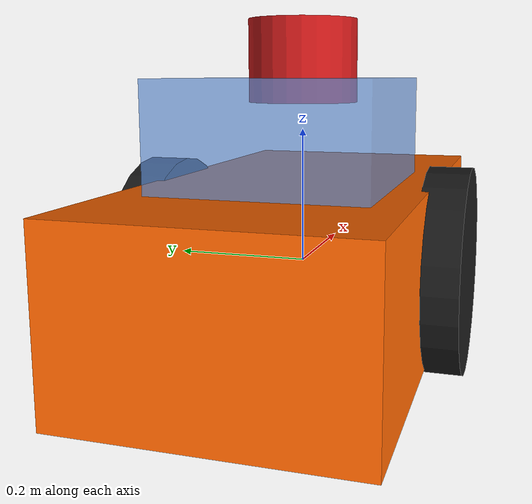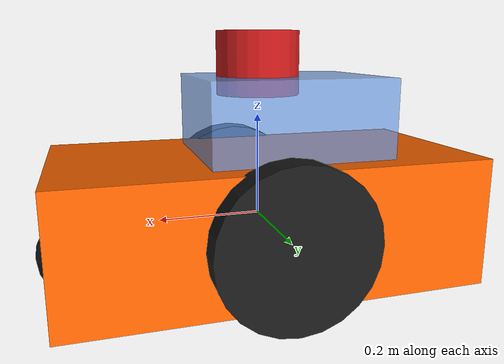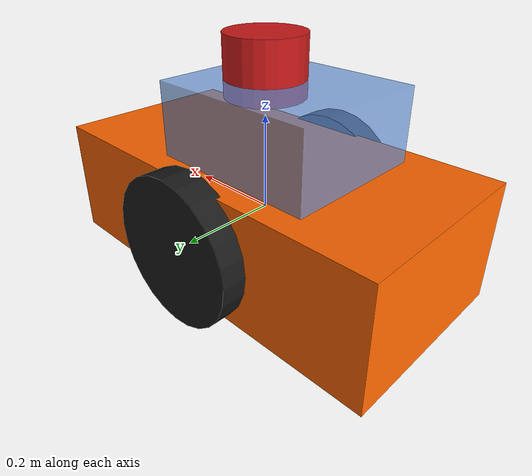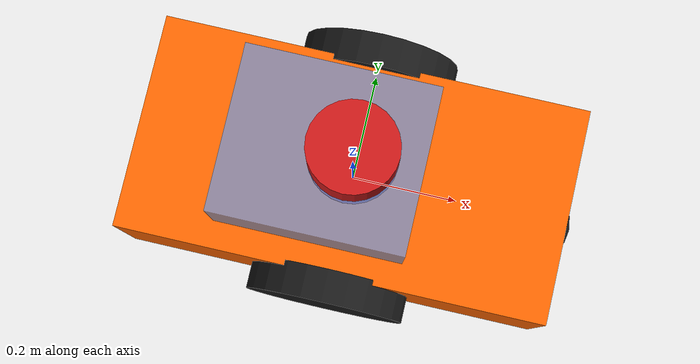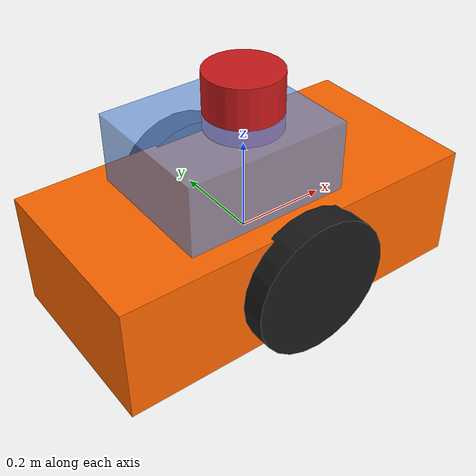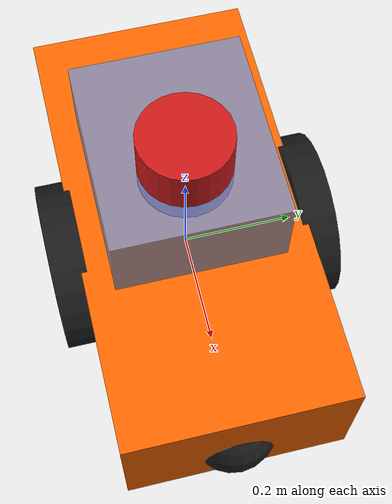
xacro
<?xml version="1.0"?>
<robot xmlns:xacro="http://www.ros.org/wiki/xacro" name="super_car">
  <material name="silver">   <color rgba="1.0 0.4 0.0 1.0"/> </material>
  <material name="blue">     <color rgba="0.40 0.60 0.90 0.7"/> </material>
  <material name="red">      <color rgba="0.80 0.10 0.10 1.0"/> </material>
  <material name="dark">     <color rgba="0.10 0.10 0.10 1.0"/> </material>

  <link name="base_link">
    <visual>
      <geometry><box size="0.8 0.4 0.25"/></geometry>
      <material name="silver"/>
    </visual>
    <visual>
      <origin xyz="-0.05 0 0.2"/>
      <geometry><box size="0.35 0.3 0.15"/></geometry>
      <material name="blue"/>
    </visual>
    <collision>
      <geometry><box size="0.8 0.4 0.25"/></geometry>
    </collision>
  </link>

  <link name="left_wheel">
    <visual><origin rpy="1.5708 0 0"/><geometry><cylinder radius="0.15" length="0.06"/></geometry><material name="dark"/></visual>
  </link>
  <joint name="left_wheel_joint" type="continuous">
    <parent link="base_link"/> <child link="left_wheel"/>
    <origin xyz="0 0.22 0"/> <axis xyz="0 1 0"/>
  </joint>

  <link name="right_wheel">
    <visual><origin rpy="1.5708 0 0"/><geometry><cylinder radius="0.15" length="0.06"/></geometry><material name="dark"/></visual>
  </link>
  <joint name="right_wheel_joint" type="continuous">
    <parent link="base_link"/> <child link="right_wheel"/>
    <origin xyz="0 -0.22 0"/> <axis xyz="0 1 0"/>
  </joint>

  <link name="caster">
    <visual><geometry><sphere radius="0.08"/></geometry><material name="dark"/></visual>
  </link>
  <joint name="caster_joint" type="fixed">
    <parent link="base_link"/> <child link="caster"/>
    <origin xyz="0.35 0 -0.05"/>
  </joint>

  <link name="lidar_link">
    <visual><geometry><cylinder radius="0.08" length="0.12"/></geometry><material name="red"/></visual>
  </link>
  <joint name="lidar_joint" type="fixed">
    <parent link="base_link"/> <child link="lidar_link"/>
    <origin xyz="0 0 0.3"/>
  </joint>

  <link name="imu_link"/>
  <joint name="imu_joint" type="fixed">
    <parent link="base_link"/> <child link="imu_link"/>
    <origin xyz="0 0 0"/>
  </joint>
</robot>
